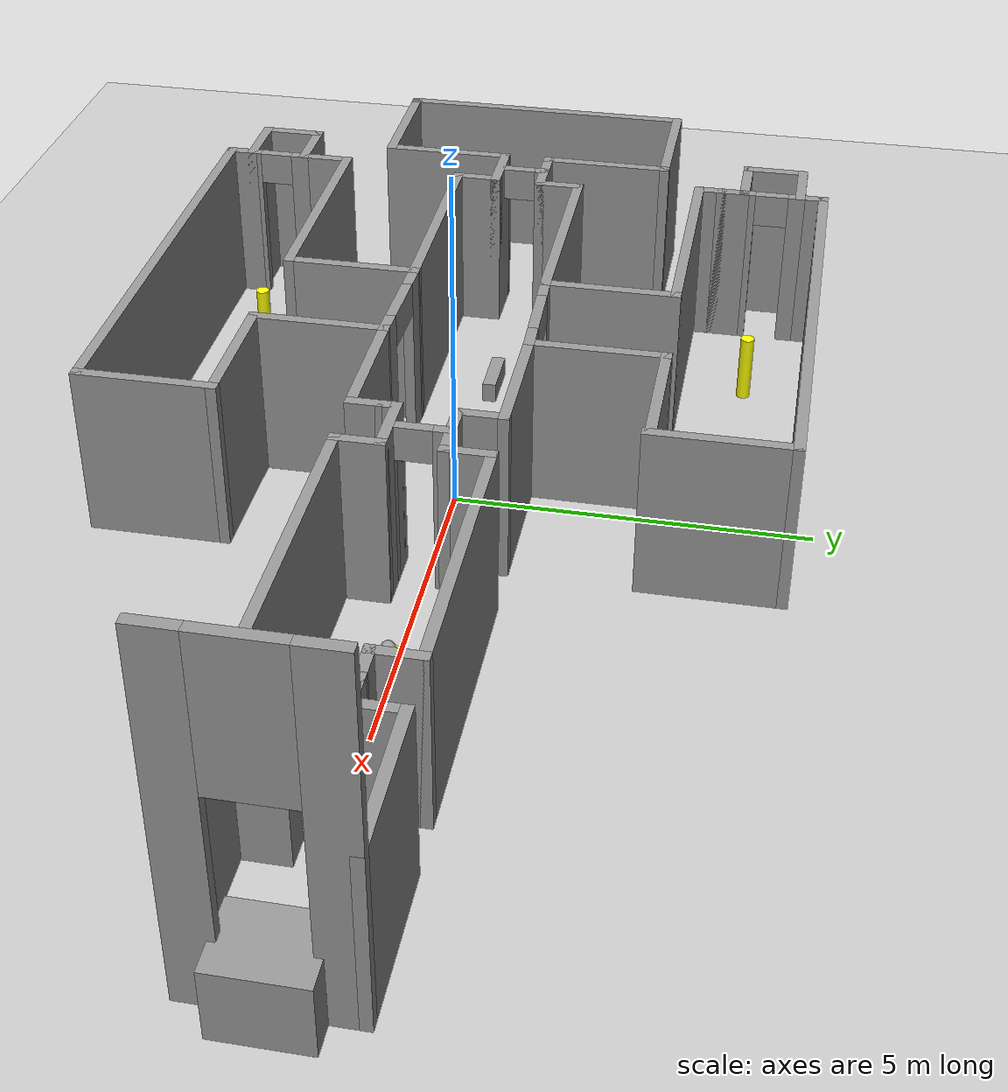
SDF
<sdf version="1.6">
 <world name="default">
  <light name="sun" type="directional">
   <pose>0 0 10 0 -0 0</pose>
   <diffuse>0.8 0.8 0.8 1</diffuse>
   <specular>0.1 0.1 0.1 1</specular>
   <attenuation>
    <range>1000</range>
    <constant>0.9</constant>
    <linear>0.01</linear>
    <quadratic>0.001</quadratic>
   </attenuation>
   <direction>-0.5 0.5 -1</direction>
  </light>
  <model name="ground_plane">
   <static>1</static>
   <link name="link">
    <collision name="collision">
     <geometry><plane><normal>0 0 1</normal><size>100 100</size></plane></geometry>
     <surface><friction><ode><mu>100</mu><mu2>50</mu2></ode></friction></surface>
    </collision>
    <visual name="visual">
     <cast_shadows>0</cast_shadows>
     <geometry><plane><normal>0 0 1</normal><size>100 100</size></plane></geometry>
     <material>
      <script><uri>file://media/materials/scripts/gazebo.material</uri><name>Gazebo/Grey</name></script>
     </material>
    </visual>
   </link>
  </model>
  <gravity>0 0 -9.8</gravity>
  <magnetic_field>6e-06 2.3e-05 -4.2e-05</magnetic_field>
  <atmosphere type="adiabatic"/>
  <physics name="default_physics" default="0" type="ode">
   <max_step_size>0.001</max_step_size>
   <real_time_factor>1</real_time_factor>
   <real_time_update_rate>1000</real_time_update_rate>
  </physics>
  <scene><ambient>0.4 0.4 0.4 1</ambient><background>0.7 0.7 0.7 1</background><shadows>1</shadows></scene>
  <spherical_coordinates>
   <surface_model>EARTH_WGS84</surface_model>
   <latitude_deg>0</latitude_deg>
   <longitude_deg>0</longitude_deg>
   <elevation>0</elevation>
   <heading_deg>0</heading_deg>
  </spherical_coordinates>
  <model name="gm1">
   <pose>0.63546 -0.02501 0 0 -0 0</pose>
   <link name="Wall_101">
    <pose>-5.975 -3.925 0 0 0 -1.5708</pose>
    <visual name="Wall_101_Visual_0">
     <pose>-0.362039 0 1.25 0 -0 0</pose>
     <geometry><box><size>0.275923 0.15 2.5</size></box></geometry>
     <material>
      <script><uri>file://media/materials/scripts/gazebo.material</uri><name>Gazebo/Grey</name></script>
      <ambient>1 1 1 1</ambient>
     </material>
    </visual>
    <collision name="Wall_101_Collision_0">
     <geometry><box><size>0.275923 0.15 2.5</size></box></geometry>
     <pose>-0.362039 0 1.25 0 -0 0</pose>
    </collision>
    <visual name="Wall_101_Visual_1">
     <pose>0.387961 0 1.25 0 -0 0</pose>
     <geometry><box><size>0.224077 0.15 2.5</size></box></geometry>
     <material>
      <script><uri>file://media/materials/scripts/gazebo.material</uri><name>Gazebo/Grey</name></script>
      <ambient>1 1 1 1</ambient>
     </material>
    </visual>
    <collision name="Wall_101_Collision_1">
     <geometry><box><size>0.224077 0.15 2.5</size></box></geometry>
     <pose>0.387961 0 1.25 0 -0 0</pose>
    </collision>
    <visual name="Wall_101_Visual_2">
     <pose>0.025923 0 2.25 0 -0 0</pose>
     <geometry><box><size>0.5 0.15 0.5</size></box></geometry>
     <material>
      <script><uri>file://media/materials/scripts/gazebo.material</uri><name>Gazebo/Grey</name></script>
      <ambient>1 1 1 1</ambient>
     </material>
    </visual>
    <collision name="Wall_101_Collision_2">
     <geometry><box><size>0.5 0.15 0.5</size></box></geometry>
     <pose>0.025923 0 2.25 0 -0 0</pose>
    </collision>
   </link>
   <link name="Wall_103">
    <pose>1.30784 0.043765 0 0 0 -1.5708</pose>
    <visual name="Wall_103_Visual_0">
     <pose>-0.25373 0 1.25 0 -0 0</pose>
     <geometry><box><size>0.242539 0.15 2.5</size></box></geometry>
     <material>
      <script><uri>file://media/materials/scripts/gazebo.material</uri><name>Gazebo/Grey</name></script>
      <ambient>1 1 1 1</ambient>
     </material>
    </visual>
    <collision name="Wall_103_Collision_0">
     <geometry><box><size>0.242539 0.15 2.5</size></box></geometry>
     <pose>-0.25373 0 1.25 0 -0 0</pose>
    </collision>
    <visual name="Wall_103_Visual_1">
     <pose>0.37127 0 1.25 0 -0 0</pose>
     <geometry><box><size>0.007461 0.15 2.5</size></box></geometry>
     <material>
      <script><uri>file://media/materials/scripts/gazebo.material</uri><name>Gazebo/Grey</name></script>
      <ambient>1 1 1 1</ambient>
     </material>
    </visual>
    <collision name="Wall_103_Collision_1">
     <geometry><box><size>0.007461 0.15 2.5</size></box></geometry>
     <pose>0.37127 0 1.25 0 -0 0</pose>
    </collision>
    <visual name="Wall_103_Visual_2">
     <pose>0.117539 0 2.25 0 -0 0</pose>
     <geometry><box><size>0.5 0.15 0.5</size></box></geometry>
     <material>
      <script><uri>file://media/materials/scripts/gazebo.material</uri><name>Gazebo/Grey</name></script>
      <ambient>1 1 1 1</ambient>
     </material>
    </visual>
    <collision name="Wall_103_Collision_2">
     <geometry><box><size>0.5 0.15 0.5</size></box></geometry>
     <pose>0.117539 0 2.25 0 -0 0</pose>
    </collision>
   </link>
   <link name="Wall_105">
    <pose>6.018 0 0 0 0 -1.5708</pose>
    <visual name="Wall_105_Visual_0">
     <pose>-0.381016 0 1.25 0 -0 0</pose>
     <geometry><box><size>0.187968 0.15 2.5</size></box></geometry>
     <material>
      <script><uri>file://media/materials/scripts/gazebo.material</uri><name>Gazebo/Grey</name></script>
      <ambient>1 1 1 1</ambient>
     </material>
    </visual>
    <collision name="Wall_105_Collision_0">
     <geometry><box><size>0.187968 0.15 2.5</size></box></geometry>
     <pose>-0.381016 0 1.25 0 -0 0</pose>
    </collision>
    <visual name="Wall_105_Visual_1">
     <pose>0.343984 0 1.25 0 -0 0</pose>
     <geometry><box><size>0.262032 0.15 2.5</size></box></geometry>
     <material>
      <script><uri>file://media/materials/scripts/gazebo.material</uri><name>Gazebo/Grey</name></script>
      <ambient>1 1 1 1</ambient>
     </material>
    </visual>
    <collision name="Wall_105_Collision_1">
     <geometry><box><size>0.262032 0.15 2.5</size></box></geometry>
     <pose>0.343984 0 1.25 0 -0 0</pose>
    </collision>
    <visual name="Wall_105_Visual_2">
     <pose>-0.037032 0 2.25 0 -0 0</pose>
     <geometry><box><size>0.5 0.15 0.5</size></box></geometry>
     <material>
      <script><uri>file://media/materials/scripts/gazebo.material</uri><name>Gazebo/Grey</name></script>
      <ambient>1 1 1 1</ambient>
     </material>
    </visual>
    <collision name="Wall_105_Collision_2">
     <geometry><box><size>0.5 0.15 0.5</size></box></geometry>
     <pose>-0.037032 0 2.25 0 -0 0</pose>
    </collision>
   </link>
   <link name="Wall_11">
    <collision name="Wall_11_Collision">
     <geometry><box><size>0.75 0.15 2.5</size></box></geometry>
     <pose>0 0 1.25 0 -0 0</pose>
    </collision>
    <visual name="Wall_11_Visual">
     <pose>0 0 1.25 0 -0 0</pose>
     <geometry><box><size>0.75 0.15 2.5</size></box></geometry>
     <material>
      <script><uri>file://media/materials/scripts/gazebo.material</uri><name>Gazebo/Grey</name></script>
      <ambient>1 1 1 1</ambient>
     </material>
    </visual>
    <pose>6.425 0.7 0 0 0 -1.5708</pose>
   </link>
   <link name="Wall_12">
    <collision name="Wall_12_Collision">
     <geometry><box><size>1 0.15 2.5</size></box></geometry>
     <pose>0 0 1.25 0 -0 0</pose>
    </collision>
    <visual name="Wall_12_Visual">
     <pose>0 0 1.25 0 -0 0</pose>
     <geometry><box><size>1 0.15 2.5</size></box></geometry>
     <material>
      <script><uri>file://media/materials/scripts/gazebo.material</uri><name>Gazebo/Grey</name></script>
      <ambient>1 1 1 1</ambient>
     </material>
    </visual>
    <pose>6 0.4 0 0 -0 3.14159</pose>
   </link>
   <link name="Wall_13">
    <collision name="Wall_13_Collision">
     <geometry><box><size>0.75 0.15 2.5</size></box></geometry>
     <pose>0 0 1.25 0 -0 0</pose>
    </collision>
    <visual name="Wall_13_Visual">
     <pose>0 0 1.25 0 -0 0</pose>
     <geometry><box><size>0.75 0.15 2.5</size></box></geometry>
     <material>
      <script><uri>file://media/materials/scripts/gazebo.material</uri><name>Gazebo/Grey</name></script>
      <ambient>1 1 1 1</ambient>
     </material>
    </visual>
    <pose>5.575 0.7 0 0 -0 1.5708</pose>
   </link>
   <link name="Wall_16">
    <collision name="Wall_16_Collision">
     <geometry><box><size>4 0.15 2.5</size></box></geometry>
     <pose>0 0 1.25 0 -0 0</pose>
    </collision>
    <visual name="Wall_16_Visual">
     <pose>0 0 1.25 0 -0 0</pose>
     <geometry><box><size>4 0.15 2.5</size></box></geometry>
     <material>
      <script><uri>file://media/materials/scripts/gazebo.material</uri><name>Gazebo/Grey</name></script>
      <ambient>1 1 1 1</ambient>
     </material>
    </visual>
    <pose>3.65 1 0 0 -0 3.14159</pose>
   </link>
   <link name="Wall_17">
    <collision name="Wall_17_Collision">
     <geometry><box><size>0.75 0.15 2.5</size></box></geometry>
     <pose>0 0 1.25 0 -0 0</pose>
    </collision>
    <visual name="Wall_17_Visual">
     <pose>0 0 1.25 0 -0 0</pose>
     <geometry><box><size>0.75 0.15 2.5</size></box></geometry>
     <material>
      <script><uri>file://media/materials/scripts/gazebo.material</uri><name>Gazebo/Grey</name></script>
      <ambient>1 1 1 1</ambient>
     </material>
    </visual>
    <pose>1.725 0.7 0 0 0 -1.5708</pose>
   </link>
   <link name="Wall_18">
    <collision name="Wall_18_Collision">
     <geometry><box><size>1 0.15 2.5</size></box></geometry>
     <pose>0 0 1.25 0 -0 0</pose>
    </collision>
    <visual name="Wall_18_Visual">
     <pose>0 0 1.25 0 -0 0</pose>
     <geometry><box><size>1 0.15 2.5</size></box></geometry>
     <material>
      <script><uri>file://media/materials/scripts/gazebo.material</uri><name>Gazebo/Grey</name></script>
      <ambient>1 1 1 1</ambient>
     </material>
    </visual>
    <pose>1.3 0.4 0 0 -0 3.14159</pose>
   </link>
   <link name="Wall_19">
    <collision name="Wall_19_Collision">
     <geometry><box><size>0.75 0.15 2.5</size></box></geometry>
     <pose>0 0 1.25 0 -0 0</pose>
    </collision>
    <visual name="Wall_19_Visual">
     <pose>0 0 1.25 0 -0 0</pose>
     <geometry><box><size>0.75 0.15 2.5</size></box></geometry>
     <material>
      <script><uri>file://media/materials/scripts/gazebo.material</uri><name>Gazebo/Grey</name></script>
      <ambient>1 1 1 1</ambient>
     </material>
    </visual>
    <pose>0.875 0.7 0 0 -0 1.5708</pose>
   </link>
   <link name="Wall_20">
    <collision name="Wall_20_Collision">
     <geometry><box><size>2 0.15 2.5</size></box></geometry>
     <pose>0 0 1.25 0 -0 0</pose>
    </collision>
    <visual name="Wall_20_Visual">
     <pose>0 0 1.25 0 -0 0</pose>
     <geometry><box><size>2 0.15 2.5</size></box></geometry>
     <material>
      <script><uri>file://media/materials/scripts/gazebo.material</uri><name>Gazebo/Grey</name></script>
      <ambient>1 1 1 1</ambient>
     </material>
    </visual>
    <pose>-0.05 1 0 0 -0 3.14159</pose>
   </link>
   <link name="Wall_21">
    <collision name="Wall_21_Collision">
     <geometry><box><size>2 0.15 2.5</size></box></geometry>
     <pose>0 0 1.25 0 -0 0</pose>
    </collision>
    <visual name="Wall_21_Visual">
     <pose>0 0 1.25 0 -0 0</pose>
     <geometry><box><size>2 0.15 2.5</size></box></geometry>
     <material>
      <script><uri>file://media/materials/scripts/gazebo.material</uri><name>Gazebo/Grey</name></script>
      <ambient>1 1 1 1</ambient>
     </material>
    </visual>
    <pose>-0.974999 1.925 0 0 -0 1.5708</pose>
   </link>
   <link name="Wall_22">
    <collision name="Wall_22_Collision">
     <geometry><box><size>2 0.15 2.5</size></box></geometry>
     <pose>0 0 1.25 0 -0 0</pose>
    </collision>
    <visual name="Wall_22_Visual">
     <pose>0 0 1.25 0 -0 0</pose>
     <geometry><box><size>2 0.15 2.5</size></box></geometry>
     <material>
      <script><uri>file://media/materials/scripts/gazebo.material</uri><name>Gazebo/Grey</name></script>
      <ambient>1 1 1 1</ambient>
     </material>
    </visual>
    <pose>-0.05 2.85 0 0 -0 0</pose>
   </link>
   <link name="Wall_23">
    <collision name="Wall_23_Collision">
     <geometry><box><size>2 0.15 2.5</size></box></geometry>
     <pose>0 0 1.25 0 -0 0</pose>
    </collision>
    <visual name="Wall_23_Visual">
     <pose>0 0 1.25 0 -0 0</pose>
     <geometry><box><size>2 0.15 2.5</size></box></geometry>
     <material>
      <script><uri>file://media/materials/scripts/gazebo.material</uri><name>Gazebo/Grey</name></script>
      <ambient>1 1 1 1</ambient>
     </material>
    </visual>
    <pose>0.875 3.74109 0 0 -0 1.5708</pose>
   </link>
   <link name="Wall_24">
    <collision name="Wall_24_Collision">
     <geometry><box><size>7 0.15 2.5</size></box></geometry>
     <pose>0 0 1.25 0 -0 0</pose>
    </collision>
    <visual name="Wall_24_Visual">
     <pose>0 0 1.25 0 -0 0</pose>
     <geometry><box><size>7 0.15 2.5</size></box></geometry>
     <material>
      <script><uri>file://media/materials/scripts/gazebo.material</uri><name>Gazebo/Grey</name></script>
      <ambient>1 1 1 1</ambient>
     </material>
    </visual>
    <pose>-2.55 4.7 0 0 -0 3.14159</pose>
   </link>
   <link name="Wall_25">
    <collision name="Wall_25_Collision">
     <geometry><box><size>0.5 0.15 2.5</size></box></geometry>
     <pose>0 0 1.25 0 -0 0</pose>
    </collision>
    <visual name="Wall_25_Visual">
     <pose>0 0 1.25 0 -0 0</pose>
     <geometry><box><size>0.5 0.15 2.5</size></box></geometry>
     <material>
      <script><uri>file://media/materials/scripts/gazebo.material</uri><name>Gazebo/Grey</name></script>
      <ambient>1 1 1 1</ambient>
     </material>
    </visual>
    <pose>-5.975 4.525 0 0 0 -1.5708</pose>
   </link>
   <link name="Wall_26">
    <collision name="Wall_26_Collision">
     <geometry><box><size>1 0.15 2.5</size></box></geometry>
     <pose>0 0 1.25 0 -0 0</pose>
    </collision>
    <visual name="Wall_26_Visual">
     <pose>0 0 1.25 0 -0 0</pose>
     <geometry><box><size>1 0.15 2.5</size></box></geometry>
     <material>
      <script><uri>file://media/materials/scripts/gazebo.material</uri><name>Gazebo/Grey</name></script>
      <ambient>1 1 1 1</ambient>
     </material>
    </visual>
    <pose>-6.4 4.35 0 0 -0 3.14159</pose>
   </link>
   <link name="Wall_27">
    <collision name="Wall_27_Collision">
     <geometry><box><size>1 0.15 2.5</size></box></geometry>
     <pose>0 0 1.25 0 -0 0</pose>
    </collision>
    <visual name="Wall_27_Visual">
     <pose>0 0 1.25 0 -0 0</pose>
     <geometry><box><size>1 0.15 2.5</size></box></geometry>
     <material>
      <script><uri>file://media/materials/scripts/gazebo.material</uri><name>Gazebo/Grey</name></script>
      <ambient>1 1 1 1</ambient>
     </material>
    </visual>
    <pose>-6.825 3.925 0 0 0 -1.5708</pose>
   </link>
   <link name="Wall_28">
    <collision name="Wall_28_Collision">
     <geometry><box><size>1 0.15 2.5</size></box></geometry>
     <pose>0 0 1.25 0 -0 0</pose>
    </collision>
    <visual name="Wall_28_Visual">
     <pose>0 0 1.25 0 -0 0</pose>
     <geometry><box><size>1 0.15 2.5</size></box></geometry>
     <material>
      <script><uri>file://media/materials/scripts/gazebo.material</uri><name>Gazebo/Grey</name></script>
      <ambient>1 1 1 1</ambient>
     </material>
    </visual>
    <pose>-6.4 3.5 0 0 -0 0</pose>
   </link>
   <link name="Wall_30">
    <collision name="Wall_30_Collision">
     <geometry><box><size>0.15 0.15 2.5</size></box></geometry>
     <pose>0 0 1.25 0 -0 0</pose>
    </collision>
    <visual name="Wall_30_Visual">
     <pose>0 0 1.25 0 -0 0</pose>
     <geometry><box><size>0.15 0.15 2.5</size></box></geometry>
     <material>
      <script><uri>file://media/materials/scripts/gazebo.material</uri><name>Gazebo/Grey</name></script>
      <ambient>1 1 1 1</ambient>
     </material>
    </visual>
    <pose>-5.975 3.15 0 0 -0 0</pose>
   </link>
   <link name="Wall_32">
    <collision name="Wall_32_Collision">
     <geometry><box><size>3.5 0.15 2.5</size></box></geometry>
     <pose>0 0 1.25 0 -0 0</pose>
    </collision>
    <visual name="Wall_32_Visual">
     <pose>0 0 1.25 0 -0 0</pose>
     <geometry><box><size>3.5 0.15 2.5</size></box></geometry>
     <material>
      <script><uri>file://media/materials/scripts/gazebo.material</uri><name>Gazebo/Grey</name></script>
      <ambient>1 1 1 1</ambient>
     </material>
    </visual>
    <pose>-4.3 2.8 0 0 -0 0</pose>
   </link>
   <link name="Wall_33">
    <collision name="Wall_33_Collision">
     <geometry><box><size>2 0.15 2.5</size></box></geometry>
     <pose>0 0 1.25 0 -0 0</pose>
    </collision>
    <visual name="Wall_33_Visual">
     <pose>0 0 1.25 0 -0 0</pose>
     <geometry><box><size>2 0.15 2.5</size></box></geometry>
     <material>
      <script><uri>file://media/materials/scripts/gazebo.material</uri><name>Gazebo/Grey</name></script>
      <ambient>1 1 1 1</ambient>
     </material>
    </visual>
    <pose>-2.625 1.875 0 0 0 -1.5708</pose>
   </link>
   <link name="Wall_34">
    <collision name="Wall_34_Collision">
     <geometry><box><size>3.25 0.15 2.5</size></box></geometry>
     <pose>0 0 1.25 0 -0 0</pose>
    </collision>
    <visual name="Wall_34_Visual">
     <pose>0 0 1.25 0 -0 0</pose>
     <geometry><box><size>3.25 0.15 2.5</size></box></geometry>
     <material>
      <script><uri>file://media/materials/scripts/gazebo.material</uri><name>Gazebo/Grey</name></script>
      <ambient>1 1 1 1</ambient>
     </material>
    </visual>
    <pose>-4.175 0.95 0 0 -0 3.14159</pose>
   </link>
   <link name="Wall_35">
    <collision name="Wall_35_Collision">
     <geometry><box><size>0.75 0.15 2.5</size></box></geometry>
     <pose>0 0 1.25 0 -0 0</pose>
    </collision>
    <visual name="Wall_35_Visual">
     <pose>0 0 1.25 0 -0 0</pose>
     <geometry><box><size>0.75 0.15 2.5</size></box></geometry>
     <material>
      <script><uri>file://media/materials/scripts/gazebo.material</uri><name>Gazebo/Grey</name></script>
      <ambient>1 1 1 1</ambient>
     </material>
    </visual>
    <pose>-5.725 0.65 0 0 0 -1.5708</pose>
   </link>
   <link name="Wall_36">
    <collision name="Wall_36_Collision">
     <geometry><box><size>1 0.15 2.5</size></box></geometry>
     <pose>0 0 1.25 0 -0 0</pose>
    </collision>
    <visual name="Wall_36_Visual">
     <pose>0 0 1.25 0 -0 0</pose>
     <geometry><box><size>1 0.15 2.5</size></box></geometry>
     <material>
      <script><uri>file://media/materials/scripts/gazebo.material</uri><name>Gazebo/Grey</name></script>
      <ambient>1 1 1 1</ambient>
     </material>
    </visual>
    <pose>-6.15 0.35 0 0 -0 3.14159</pose>
   </link>
   <link name="Wall_37">
    <collision name="Wall_37_Collision">
     <geometry><box><size>2 0.15 2.5</size></box></geometry>
     <pose>0 0 1.25 0 -0 0</pose>
    </collision>
    <visual name="Wall_37_Visual">
     <pose>0 0 1.25 0 -0 0</pose>
     <geometry><box><size>2 0.15 2.5</size></box></geometry>
     <material>
      <script><uri>file://media/materials/scripts/gazebo.material</uri><name>Gazebo/Grey</name></script>
      <ambient>1 1 1 1</ambient>
     </material>
    </visual>
    <pose>-6.575 1.275 0 0 -0 1.5708</pose>
   </link>
   <link name="Wall_38">
    <collision name="Wall_38_Collision">
     <geometry><box><size>2 0.15 2.5</size></box></geometry>
     <pose>0 0 1.25 0 -0 0</pose>
    </collision>
    <visual name="Wall_38_Visual">
     <pose>0 0 1.25 0 -0 0</pose>
     <geometry><box><size>2 0.15 2.5</size></box></geometry>
     <material>
      <script><uri>file://media/materials/scripts/gazebo.material</uri><name>Gazebo/Grey</name></script>
      <ambient>1 1 1 1</ambient>
     </material>
    </visual>
    <pose>-7.5 2.2 0 0 -0 3.14159</pose>
   </link>
   <link name="Wall_39">
    <collision name="Wall_39_Collision">
     <geometry><box><size>4.55 0.15 2.5</size></box></geometry>
     <pose>0 0 1.25 0 -0 0</pose>
    </collision>
    <visual name="Wall_39_Visual">
     <pose>0 0 1.25 0 -0 0</pose>
     <geometry><box><size>4.55 0.15 2.5</size></box></geometry>
     <material>
      <script><uri>file://media/materials/scripts/gazebo.material</uri><name>Gazebo/Grey</name></script>
      <ambient>1 1 1 1</ambient>
     </material>
    </visual>
    <pose>-8.425 0 0 0 0 -1.5708</pose>
   </link>
   <link name="Wall_40">
    <collision name="Wall_40_Collision">
     <geometry><box><size>2 0.15 2.5</size></box></geometry>
     <pose>0 0 1.25 0 -0 0</pose>
    </collision>
    <visual name="Wall_40_Visual">
     <pose>0 0 1.25 0 -0 0</pose>
     <geometry><box><size>2 0.15 2.5</size></box></geometry>
     <material>
      <script><uri>file://media/materials/scripts/gazebo.material</uri><name>Gazebo/Grey</name></script>
      <ambient>1 1 1 1</ambient>
     </material>
    </visual>
    <pose>-7.5 -2.2 0 0 -0 0</pose>
   </link>
   <link name="Wall_41">
    <collision name="Wall_41_Collision">
     <geometry><box><size>2 0.15 2.5</size></box></geometry>
     <pose>0 0 1.25 0 -0 0</pose>
    </collision>
    <visual name="Wall_41_Visual">
     <pose>0 0 1.25 0 -0 0</pose>
     <geometry><box><size>2 0.15 2.5</size></box></geometry>
     <material>
      <script><uri>file://media/materials/scripts/gazebo.material</uri><name>Gazebo/Grey</name></script>
      <ambient>1 1 1 1</ambient>
     </material>
    </visual>
    <pose>-6.575 -1.275 0 0 -0 1.5708</pose>
   </link>
   <link name="Wall_43">
    <collision name="Wall_43_Collision">
     <geometry><box><size>0.965 0.15 2.5</size></box></geometry>
     <pose>0 0 1.25 0 -0 0</pose>
    </collision>
    <visual name="Wall_43_Visual">
     <pose>0 0 1.25 0 -0 0</pose>
     <geometry><box><size>0.965 0.15 2.5</size></box></geometry>
     <material>
      <script><uri>file://media/materials/scripts/gazebo.material</uri><name>Gazebo/Grey</name></script>
      <ambient>1 1 1 1</ambient>
     </material>
    </visual>
    <pose>-6.1675 -0.35 0 0 -0 0</pose>
   </link>
   <link name="Wall_44">
    <collision name="Wall_44_Collision">
     <geometry><box><size>0.75 0.15 2.5</size></box></geometry>
     <pose>0 0 1.25 0 -0 0</pose>
    </collision>
    <visual name="Wall_44_Visual">
     <pose>0 0 1.25 0 -0 0</pose>
     <geometry><box><size>0.75 0.15 2.5</size></box></geometry>
     <material>
      <script><uri>file://media/materials/scripts/gazebo.material</uri><name>Gazebo/Grey</name></script>
      <ambient>1 1 1 1</ambient>
     </material>
    </visual>
    <pose>-5.76 -0.65 0 0 0 -1.5708</pose>
   </link>
   <link name="Wall_45">
    <collision name="Wall_45_Collision">
     <geometry><box><size>3.285 0.15 2.5</size></box></geometry>
     <pose>0 0 1.25 0 -0 0</pose>
    </collision>
    <visual name="Wall_45_Visual">
     <pose>0 0 1.25 0 -0 0</pose>
     <geometry><box><size>3.285 0.15 2.5</size></box></geometry>
     <material>
      <script><uri>file://media/materials/scripts/gazebo.material</uri><name>Gazebo/Grey</name></script>
      <ambient>1 1 1 1</ambient>
     </material>
    </visual>
    <pose>-4.1925 -0.95 0 0 -0 0</pose>
   </link>
   <link name="Wall_46">
    <collision name="Wall_46_Collision">
     <geometry><box><size>2 0.15 2.5</size></box></geometry>
     <pose>0 0 1.25 0 -0 0</pose>
    </collision>
    <visual name="Wall_46_Visual">
     <pose>0 0 1.25 0 -0 0</pose>
     <geometry><box><size>2 0.15 2.5</size></box></geometry>
     <material>
      <script><uri>file://media/materials/scripts/gazebo.material</uri><name>Gazebo/Grey</name></script>
      <ambient>1 1 1 1</ambient>
     </material>
    </visual>
    <pose>-2.625 -1.875 0 0 0 -1.5708</pose>
   </link>
   <link name="Wall_47">
    <collision name="Wall_47_Collision">
     <geometry><box><size>3.5 0.15 2.5</size></box></geometry>
     <pose>0 0 1.25 0 -0 0</pose>
    </collision>
    <visual name="Wall_47_Visual">
     <pose>0 0 1.25 0 -0 0</pose>
     <geometry><box><size>3.5 0.15 2.5</size></box></geometry>
     <material>
      <script><uri>file://media/materials/scripts/gazebo.material</uri><name>Gazebo/Grey</name></script>
      <ambient>1 1 1 1</ambient>
     </material>
    </visual>
    <pose>-4.3 -2.8 0 0 -0 3.14159</pose>
   </link>
   <link name="Wall_49">
    <collision name="Wall_49_Collision">
     <geometry><box><size>0.85 0.15 2.5</size></box></geometry>
     <pose>0 0 1.25 0 -0 0</pose>
    </collision>
    <visual name="Wall_49_Visual">
     <pose>0 0 1.25 0 -0 0</pose>
     <geometry><box><size>0.85 0.15 2.5</size></box></geometry>
     <material>
      <script><uri>file://media/materials/scripts/gazebo.material</uri><name>Gazebo/Grey</name></script>
      <ambient>1 1 1 1</ambient>
     </material>
    </visual>
    <pose>-5.975 3.15 0 0 0 -1.5708</pose>
   </link>
   <link name="Wall_5">
    <pose>8.425 0 0 0 -0 1.5708</pose>
    <visual name="Wall_5_Visual_0">
     <pose>-0.7875 0 2.5 0 -0 0</pose>
     <geometry><box><size>0.575 0.15 5</size></box></geometry>
     <material>
      <script><uri>file://media/materials/scripts/gazebo.material</uri><name>Gazebo/Grey</name></script>
      <ambient>1 1 1 1</ambient>
     </material>
    </visual>
    <collision name="Wall_5_Collision_0">
     <geometry><box><size>0.575 0.15 5</size></box></geometry>
     <pose>-0.7875 0 2.5 0 -0 0</pose>
    </collision>
    <visual name="Wall_5_Visual_1">
     <pose>0.7875 0 2.5 0 -0 0</pose>
     <geometry><box><size>0.575 0.15 5</size></box></geometry>
     <material>
      <script><uri>file://media/materials/scripts/gazebo.material</uri><name>Gazebo/Grey</name></script>
      <ambient>1 1 1 1</ambient>
     </material>
    </visual>
    <collision name="Wall_5_Collision_1">
     <geometry><box><size>0.575 0.15 5</size></box></geometry>
     <pose>0.7875 0 2.5 0 -0 0</pose>
    </collision>
    <visual name="Wall_5_Visual_2">
     <pose>0 0 4 0 -0 0</pose>
     <geometry><box><size>1 0.15 2</size></box></geometry>
     <material>
      <script><uri>file://media/materials/scripts/gazebo.material</uri><name>Gazebo/Grey</name></script>
      <ambient>1 1 1 1</ambient>
     </material>
    </visual>
    <collision name="Wall_5_Collision_2">
     <geometry><box><size>1 0.15 2</size></box></geometry>
     <pose>0 0 4 0 -0 0</pose>
    </collision>
   </link>
   <link name="Wall_51">
    <collision name="Wall_51_Collision">
     <geometry><box><size>0.85 0.15 2.5</size></box></geometry>
     <pose>0 0 1.25 0 -0 0</pose>
    </collision>
    <visual name="Wall_51_Visual">
     <pose>0 0 1.25 0 -0 0</pose>
     <geometry><box><size>0.85 0.15 2.5</size></box></geometry>
     <material>
      <script><uri>file://media/materials/scripts/gazebo.material</uri><name>Gazebo/Grey</name></script>
      <ambient>1 1 1 1</ambient>
     </material>
    </visual>
    <pose>-5.975 -3.15 0 0 0 -1.5708</pose>
   </link>
   <link name="Wall_54">
    <collision name="Wall_54_Collision">
     <geometry><box><size>1 0.15 2.5</size></box></geometry>
     <pose>0 0 1.25 0 -0 0</pose>
    </collision>
    <visual name="Wall_54_Visual">
     <pose>0 0 1.25 0 -0 0</pose>
     <geometry><box><size>1 0.15 2.5</size></box></geometry>
     <material>
      <script><uri>file://media/materials/scripts/gazebo.material</uri><name>Gazebo/Grey</name></script>
      <ambient>1 1 1 1</ambient>
     </material>
    </visual>
    <pose>-6.4 -3.5 0 0 -0 3.14159</pose>
   </link>
   <link name="Wall_55">
    <collision name="Wall_55_Collision">
     <geometry><box><size>1 0.15 2.5</size></box></geometry>
     <pose>0 0 1.25 0 -0 0</pose>
    </collision>
    <visual name="Wall_55_Visual">
     <pose>0 0 1.25 0 -0 0</pose>
     <geometry><box><size>1 0.15 2.5</size></box></geometry>
     <material>
      <script><uri>file://media/materials/scripts/gazebo.material</uri><name>Gazebo/Grey</name></script>
      <ambient>1 1 1 1</ambient>
     </material>
    </visual>
    <pose>-6.825 -3.925 0 0 0 -1.5708</pose>
   </link>
   <link name="Wall_56">
    <collision name="Wall_56_Collision">
     <geometry><box><size>1 0.15 2.5</size></box></geometry>
     <pose>0 0 1.25 0 -0 0</pose>
    </collision>
    <visual name="Wall_56_Visual">
     <pose>0 0 1.25 0 -0 0</pose>
     <geometry><box><size>1 0.15 2.5</size></box></geometry>
     <material>
      <script><uri>file://media/materials/scripts/gazebo.material</uri><name>Gazebo/Grey</name></script>
      <ambient>1 1 1 1</ambient>
     </material>
    </visual>
    <pose>-6.4 -4.35 0 0 -0 0</pose>
   </link>
   <link name="Wall_57">
    <collision name="Wall_57_Collision">
     <geometry><box><size>0.5 0.15 2.5</size></box></geometry>
     <pose>0 0 1.25 0 -0 0</pose>
    </collision>
    <visual name="Wall_57_Visual">
     <pose>0 0 1.25 0 -0 0</pose>
     <geometry><box><size>0.5 0.15 2.5</size></box></geometry>
     <material>
      <script><uri>file://media/materials/scripts/gazebo.material</uri><name>Gazebo/Grey</name></script>
      <ambient>1 1 1 1</ambient>
     </material>
    </visual>
    <pose>-5.975 -4.525 0 0 0 -1.5708</pose>
   </link>
   <link name="Wall_58">
    <collision name="Wall_58_Collision">
     <geometry><box><size>7 0.15 2.5</size></box></geometry>
     <pose>0 0 1.25 0 -0 0</pose>
    </collision>
    <visual name="Wall_58_Visual">
     <pose>0 0 1.25 0 -0 0</pose>
     <geometry><box><size>7 0.15 2.5</size></box></geometry>
     <material>
      <script><uri>file://media/materials/scripts/gazebo.material</uri><name>Gazebo/Grey</name></script>
      <ambient>1 1 1 1</ambient>
     </material>
    </visual>
    <pose>-2.55 -4.7 0 0 -0 0</pose>
   </link>
   <link name="Wall_61">
    <collision name="Wall_61_Collision">
     <geometry><box><size>2 0.15 2.5</size></box></geometry>
     <pose>0 0 1.25 0 -0 0</pose>
    </collision>
    <visual name="Wall_61_Visual">
     <pose>0 0 1.25 0 -0 0</pose>
     <geometry><box><size>2 0.15 2.5</size></box></geometry>
     <material>
      <script><uri>file://media/materials/scripts/gazebo.material</uri><name>Gazebo/Grey</name></script>
      <ambient>1 1 1 1</ambient>
     </material>
    </visual>
    <pose>0.875 -3.775 0 0 -0 1.5708</pose>
   </link>
   <link name="Wall_62">
    <collision name="Wall_62_Collision">
     <geometry><box><size>2 0.15 2.5</size></box></geometry>
     <pose>0 0 1.25 0 -0 0</pose>
    </collision>
    <visual name="Wall_62_Visual">
     <pose>0 0 1.25 0 -0 0</pose>
     <geometry><box><size>2 0.15 2.5</size></box></geometry>
     <material>
      <script><uri>file://media/materials/scripts/gazebo.material</uri><name>Gazebo/Grey</name></script>
      <ambient>1 1 1 1</ambient>
     </material>
    </visual>
    <pose>-0.05 -2.85 0 0 -0 3.14159</pose>
   </link>
   <link name="Wall_63">
    <collision name="Wall_63_Collision">
     <geometry><box><size>2 0.15 2.5</size></box></geometry>
     <pose>0 0 1.25 0 -0 0</pose>
    </collision>
    <visual name="Wall_63_Visual">
     <pose>0 0 1.25 0 -0 0</pose>
     <geometry><box><size>2 0.15 2.5</size></box></geometry>
     <material>
      <script><uri>file://media/materials/scripts/gazebo.material</uri><name>Gazebo/Grey</name></script>
      <ambient>1 1 1 1</ambient>
     </material>
    </visual>
    <pose>-0.974999 -1.925 0 0 -0 1.5708</pose>
   </link>
   <link name="Wall_66">
    <collision name="Wall_66_Collision">
     <geometry><box><size>2 0.15 2.5</size></box></geometry>
     <pose>0 0 1.25 0 -0 0</pose>
    </collision>
    <visual name="Wall_66_Visual">
     <pose>0 0 1.25 0 -0 0</pose>
     <geometry><box><size>2 0.15 2.5</size></box></geometry>
     <material>
      <script><uri>file://media/materials/scripts/gazebo.material</uri><name>Gazebo/Grey</name></script>
      <ambient>1 1 1 1</ambient>
     </material>
    </visual>
    <pose>-0.05 -1 0 0 -0 0</pose>
   </link>
   <link name="Wall_7">
    <collision name="Wall_7_Collision">
     <geometry><box><size>2.15 0.15 2.5</size></box></geometry>
     <pose>0 0 1.25 0 -0 0</pose>
    </collision>
    <visual name="Wall_7_Visual">
     <pose>0 0 1.25 0 -0 0</pose>
     <geometry><box><size>2.15 0.15 2.5</size></box></geometry>
     <material>
      <script><uri>file://media/materials/scripts/gazebo.material</uri><name>Gazebo/Grey</name></script>
      <ambient>1 1 1 1</ambient>
     </material>
    </visual>
    <pose>7.425 1 0 0 -0 3.14159</pose>
   </link>
   <link name="Wall_71">
    <collision name="Wall_71_Collision">
     <geometry><box><size>0.15 0.15 2.5</size></box></geometry>
     <pose>0 0 1.25 0 -0 0</pose>
    </collision>
    <visual name="Wall_71_Visual">
     <pose>0 0 1.25 0 -0 0</pose>
     <geometry><box><size>0.15 0.15 2.5</size></box></geometry>
     <material>
      <script><uri>file://media/materials/scripts/gazebo.material</uri><name>Gazebo/Grey</name></script>
      <ambient>1 1 1 1</ambient>
     </material>
    </visual>
    <pose>0.875 -0.65 0 0 -0 0</pose>
   </link>
   <link name="Wall_72">
    <collision name="Wall_72_Collision">
     <geometry><box><size>0.15 0.15 2.5</size></box></geometry>
     <pose>0 0 1.25 0 -0 0</pose>
    </collision>
    <visual name="Wall_72_Visual">
     <pose>0 0 1.25 0 -0 0</pose>
     <geometry><box><size>0.15 0.15 2.5</size></box></geometry>
     <material>
      <script><uri>file://media/materials/scripts/gazebo.material</uri><name>Gazebo/Grey</name></script>
      <ambient>1 1 1 1</ambient>
     </material>
    </visual>
    <pose>0.875 -0.65 0 0 -0 0</pose>
   </link>
   <link name="Wall_83">
    <collision name="Wall_83_Collision">
     <geometry><box><size>0.75 0.15 2.5</size></box></geometry>
     <pose>0 0 1.25 0 -0 0</pose>
    </collision>
    <visual name="Wall_83_Visual">
     <pose>0 0 1.25 0 -0 0</pose>
     <geometry><box><size>0.75 0.15 2.5</size></box></geometry>
     <material>
      <script><uri>file://media/materials/scripts/gazebo.material</uri><name>Gazebo/Grey</name></script>
      <ambient>1 1 1 1</ambient>
     </material>
    </visual>
    <pose>0.875 -0.7 0 0 -0 1.5708</pose>
   </link>
   <link name="Wall_84">
    <collision name="Wall_84_Collision">
     <geometry><box><size>1 0.15 2.5</size></box></geometry>
     <pose>0 0 1.25 0 -0 0</pose>
    </collision>
    <visual name="Wall_84_Visual">
     <pose>0 0 1.25 0 -0 0</pose>
     <geometry><box><size>1 0.15 2.5</size></box></geometry>
     <material>
      <script><uri>file://media/materials/scripts/gazebo.material</uri><name>Gazebo/Grey</name></script>
      <ambient>1 1 1 1</ambient>
     </material>
    </visual>
    <pose>1.3 -0.4 0 0 -0 0</pose>
   </link>
   <link name="Wall_85">
    <collision name="Wall_85_Collision">
     <geometry><box><size>0.75 0.15 2.5</size></box></geometry>
     <pose>0 0 1.25 0 -0 0</pose>
    </collision>
    <visual name="Wall_85_Visual">
     <pose>0 0 1.25 0 -0 0</pose>
     <geometry><box><size>0.75 0.15 2.5</size></box></geometry>
     <material>
      <script><uri>file://media/materials/scripts/gazebo.material</uri><name>Gazebo/Grey</name></script>
      <ambient>1 1 1 1</ambient>
     </material>
    </visual>
    <pose>1.725 -0.7 0 0 0 -1.5708</pose>
   </link>
   <link name="Wall_86">
    <collision name="Wall_86_Collision">
     <geometry><box><size>4 0.15 2.5</size></box></geometry>
     <pose>0 0 1.25 0 -0 0</pose>
    </collision>
    <visual name="Wall_86_Visual">
     <pose>0 0 1.25 0 -0 0</pose>
     <geometry><box><size>4 0.15 2.5</size></box></geometry>
     <material>
      <script><uri>file://media/materials/scripts/gazebo.material</uri><name>Gazebo/Grey</name></script>
      <ambient>1 1 1 1</ambient>
     </material>
    </visual>
    <pose>3.65 -1 0 0 -0 0</pose>
   </link>
   <link name="Wall_87">
    <collision name="Wall_87_Collision">
     <geometry><box><size>0.75 0.15 2.5</size></box></geometry>
     <pose>0 0 1.25 0 -0 0</pose>
    </collision>
    <visual name="Wall_87_Visual">
     <pose>0 0 1.25 0 -0 0</pose>
     <geometry><box><size>0.75 0.15 2.5</size></box></geometry>
     <material>
      <script><uri>file://media/materials/scripts/gazebo.material</uri><name>Gazebo/Grey</name></script>
      <ambient>1 1 1 1</ambient>
     </material>
    </visual>
    <pose>5.575 -0.7 0 0 -0 1.5708</pose>
   </link>
   <link name="Wall_88">
    <collision name="Wall_88_Collision">
     <geometry><box><size>1 0.15 2.5</size></box></geometry>
     <pose>0 0 1.25 0 -0 0</pose>
    </collision>
    <visual name="Wall_88_Visual">
     <pose>0 0 1.25 0 -0 0</pose>
     <geometry><box><size>1 0.15 2.5</size></box></geometry>
     <material>
      <script><uri>file://media/materials/scripts/gazebo.material</uri><name>Gazebo/Grey</name></script>
      <ambient>1 1 1 1</ambient>
     </material>
    </visual>
    <pose>6 -0.4 0 0 -0 0</pose>
   </link>
   <link name="Wall_89">
    <collision name="Wall_89_Collision">
     <geometry><box><size>0.75 0.15 2.5</size></box></geometry>
     <pose>0 0 1.25 0 -0 0</pose>
    </collision>
    <visual name="Wall_89_Visual">
     <pose>0 0 1.25 0 -0 0</pose>
     <geometry><box><size>0.75 0.15 2.5</size></box></geometry>
     <material>
      <script><uri>file://media/materials/scripts/gazebo.material</uri><name>Gazebo/Grey</name></script>
      <ambient>1 1 1 1</ambient>
     </material>
    </visual>
    <pose>6.425 -0.7 0 0 0 -1.5708</pose>
   </link>
   <link name="Wall_9">
    <collision name="Wall_9_Collision">
     <geometry><box><size>2.15 0.15 2.5</size></box></geometry>
     <pose>0 0 1.25 0 -0 0</pose>
    </collision>
    <visual name="Wall_9_Visual">
     <pose>0 0 1.25 0 -0 0</pose>
     <geometry><box><size>2.15 0.15 2.5</size></box></geometry>
     <material>
      <script><uri>file://media/materials/scripts/gazebo.material</uri><name>Gazebo/Grey</name></script>
      <ambient>1 1 1 1</ambient>
     </material>
    </visual>
    <pose>7.425 -1 0 0 -0 3.14159</pose>
   </link>
   <link name="Wall_93">
    <pose>-1.8 0.975 0 0 -0 0.030294</pose>
    <visual name="Wall_93_Visual_0">
     <pose>-0.674917 0 1.25 0 -0 0</pose>
     <geometry><box><size>0.450923 0.15 2.5</size></box></geometry>
     <material>
      <script><uri>file://media/materials/scripts/gazebo.material</uri><name>Gazebo/Grey</name></script>
      <ambient>1 1 1 1</ambient>
     </material>
    </visual>
    <collision name="Wall_93_Collision_0">
     <geometry><box><size>0.450923 0.15 2.5</size></box></geometry>
     <pose>-0.674917 0 1.25 0 -0 0</pose>
    </collision>
    <visual name="Wall_93_Visual_1">
     <pose>0.675461 0 1.25 0 -0 0</pose>
     <geometry><box><size>0.449835 0.15 2.5</size></box></geometry>
     <material>
      <script><uri>file://media/materials/scripts/gazebo.material</uri><name>Gazebo/Grey</name></script>
      <ambient>1 1 1 1</ambient>
     </material>
    </visual>
    <collision name="Wall_93_Collision_1">
     <geometry><box><size>0.449835 0.15 2.5</size></box></geometry>
     <pose>0.675461 0 1.25 0 -0 0</pose>
    </collision>
    <visual name="Wall_93_Visual_2">
     <pose>0.000544 0 2.25 0 -0 0</pose>
     <geometry><box><size>0.9 0.15 0.5</size></box></geometry>
     <material>
      <script><uri>file://media/materials/scripts/gazebo.material</uri><name>Gazebo/Grey</name></script>
      <ambient>1 1 1 1</ambient>
     </material>
    </visual>
    <collision name="Wall_93_Collision_2">
     <geometry><box><size>0.9 0.15 0.5</size></box></geometry>
     <pose>0.000544 0 2.25 0 -0 0</pose>
    </collision>
   </link>
   <link name="Wall_95">
    <pose>-1.8 -0.975 0 0 -0 3.1113</pose>
    <visual name="Wall_95_Visual_0">
     <pose>-0.693504 0 1.25 0 -0 0</pose>
     <geometry><box><size>0.413748 0.15 2.5</size></box></geometry>
     <material>
      <script><uri>file://media/materials/scripts/gazebo.material</uri><name>Gazebo/Grey</name></script>
      <ambient>1 1 1 1</ambient>
     </material>
    </visual>
    <collision name="Wall_95_Collision_0">
     <geometry><box><size>0.413748 0.15 2.5</size></box></geometry>
     <pose>-0.693504 0 1.25 0 -0 0</pose>
    </collision>
    <visual name="Wall_95_Visual_1">
     <pose>0.656874 0 1.25 0 -0 0</pose>
     <geometry><box><size>0.487009 0.15 2.5</size></box></geometry>
     <material>
      <script><uri>file://media/materials/scripts/gazebo.material</uri><name>Gazebo/Grey</name></script>
      <ambient>1 1 1 1</ambient>
     </material>
    </visual>
    <collision name="Wall_95_Collision_1">
     <geometry><box><size>0.487009 0.15 2.5</size></box></geometry>
     <pose>0.656874 0 1.25 0 -0 0</pose>
    </collision>
    <visual name="Wall_95_Visual_2">
     <pose>-0.03663 0 2.25 0 -0 0</pose>
     <geometry><box><size>0.9 0.15 0.5</size></box></geometry>
     <material>
      <script><uri>file://media/materials/scripts/gazebo.material</uri><name>Gazebo/Grey</name></script>
      <ambient>1 1 1 1</ambient>
     </material>
    </visual>
    <collision name="Wall_95_Collision_2">
     <geometry><box><size>0.9 0.15 0.5</size></box></geometry>
     <pose>-0.03663 0 2.25 0 -0 0</pose>
    </collision>
   </link>
   <link name="Wall_97">
    <pose>-6.14822 0.043765 0 0 0 -1.5708</pose>
    <visual name="Wall_97_Visual_0">
     <pose>-0.268643 0 1.25 0 -0 0</pose>
     <geometry><box><size>0.212715 0.15 2.5</size></box></geometry>
     <material>
      <script><uri>file://media/materials/scripts/gazebo.material</uri><name>Gazebo/Grey</name></script>
      <ambient>1 1 1 1</ambient>
     </material>
    </visual>
    <collision name="Wall_97_Collision_0">
     <geometry><box><size>0.212715 0.15 2.5</size></box></geometry>
     <pose>-0.268643 0 1.25 0 -0 0</pose>
    </collision>
    <visual name="Wall_97_Visual_1">
     <pose>0.356357 0 1.25 0 -0 0</pose>
     <geometry><box><size>0.037285 0.15 2.5</size></box></geometry>
     <material>
      <script><uri>file://media/materials/scripts/gazebo.material</uri><name>Gazebo/Grey</name></script>
      <ambient>1 1 1 1</ambient>
     </material>
    </visual>
    <collision name="Wall_97_Collision_1">
     <geometry><box><size>0.037285 0.15 2.5</size></box></geometry>
     <pose>0.356357 0 1.25 0 -0 0</pose>
    </collision>
    <visual name="Wall_97_Visual_2">
     <pose>0.087715 0 2.25 0 -0 0</pose>
     <geometry><box><size>0.5 0.15 0.5</size></box></geometry>
     <material>
      <script><uri>file://media/materials/scripts/gazebo.material</uri><name>Gazebo/Grey</name></script>
      <ambient>1 1 1 1</ambient>
     </material>
    </visual>
    <collision name="Wall_97_Collision_2">
     <geometry><box><size>0.5 0.15 0.5</size></box></geometry>
     <pose>0.087715 0 2.25 0 -0 0</pose>
    </collision>
   </link>
   <link name="Wall_99">
    <pose>-5.975 3.925 0 0 0 -1.5708</pose>
    <visual name="Wall_99_Visual_0">
     <pose>-0.373836 0 1.25 0 -0 0</pose>
     <geometry><box><size>0.252328 0.15 2.5</size></box></geometry>
     <material>
      <script><uri>file://media/materials/scripts/gazebo.material</uri><name>Gazebo/Grey</name></script>
      <ambient>1 1 1 1</ambient>
     </material>
    </visual>
    <collision name="Wall_99_Collision_0">
     <geometry><box><size>0.252328 0.15 2.5</size></box></geometry>
     <pose>-0.373836 0 1.25 0 -0 0</pose>
    </collision>
    <visual name="Wall_99_Visual_1">
     <pose>0.376164 0 1.25 0 -0 0</pose>
     <geometry><box><size>0.247672 0.15 2.5</size></box></geometry>
     <material>
      <script><uri>file://media/materials/scripts/gazebo.material</uri><name>Gazebo/Grey</name></script>
      <ambient>1 1 1 1</ambient>
     </material>
    </visual>
    <collision name="Wall_99_Collision_1">
     <geometry><box><size>0.247672 0.15 2.5</size></box></geometry>
     <pose>0.376164 0 1.25 0 -0 0</pose>
    </collision>
    <visual name="Wall_99_Visual_2">
     <pose>0.002328 0 2.25 0 -0 0</pose>
     <geometry><box><size>0.5 0.15 0.5</size></box></geometry>
     <material>
      <script><uri>file://media/materials/scripts/gazebo.material</uri><name>Gazebo/Grey</name></script>
      <ambient>1 1 1 1</ambient>
     </material>
    </visual>
    <collision name="Wall_99_Collision_2">
     <geometry><box><size>0.5 0.15 0.5</size></box></geometry>
     <pose>0.002328 0 2.25 0 -0 0</pose>
    </collision>
   </link>
   <static>1</static>
  </model>
  <model name="unit_cylinder_box">
   <link name="link_1">
    <pose>1.04323 4.05988 -0.35 0 -0 0</pose>
    <inertial>
     <mass>1</mass>
     <inertia>
      <ixx>0.166667</ixx>
      <ixy>0</ixy>
      <ixz>0</ixz>
      <iyy>0.166667</iyy>
      <iyz>0</iyz>
      <izz>0.166667</izz>
     </inertia>
    </inertial>
    <visual name="visual">
     <geometry><box><size>0.8 0.2 0.3</size></box></geometry>
     <material>
      <lighting>1</lighting>
      <script><uri>file://media/materials/scripts/gazebo.material</uri><name>Gazebo/Grey</name></script>
      <ambient>0.3 0.3 0.3 1</ambient>
      <diffuse>0.7 0.7 0.7 1</diffuse>
      <specular>0.01 0.01 0.01 1</specular>
      <emissive>0 0 0 1</emissive>
      <shader type="vertex"><normal_map>__default__</normal_map></shader>
     </material>
    </visual>
    <collision name="collision">
     <geometry><box><size>0.8 0.2 0.3</size></box></geometry>
     <surface>
      <friction>
       <ode><mu>1</mu><mu2>1</mu2><fdir1>0 0 0</fdir1><slip1>0</slip1><slip2>0</slip2></ode>
       <torsional>
        <coefficient>1</coefficient>
        <patch_radius>0</patch_radius>
        <surface_radius>0</surface_radius>
        <use_patch_radius>1</use_patch_radius>
        <ode><slip>0</slip></ode>
       </torsional>
      </friction>
      <bounce><restitution_coefficient>0</restitution_coefficient><threshold>1e+06</threshold></bounce>
      <contact>
       <collide_without_contact>0</collide_without_contact>
       <collide_without_contact_bitmask>1</collide_without_contact_bitmask>
       <collide_bitmask>1</collide_bitmask>
       <ode>
        <soft_cfm>0</soft_cfm>
        <soft_erp>0.2</soft_erp>
        <kp>1e+13</kp>
        <kd>1</kd>
        <max_vel>0.01</max_vel>
        <min_depth>0</min_depth>
       </ode>
       <bullet>
        <split_impulse>1</split_impulse>
        <split_impulse_penetration_threshold>-0.01</split_impulse_penetration_threshold>
        <soft_cfm>0</soft_cfm>
        <soft_erp>0.2</soft_erp>
        <kp>1e+13</kp>
        <kd>1</kd>
       </bullet>
      </contact>
     </surface>
    </collision>
   </link>
   <link name="link_2">
    <pose>8.04323 4.05988 -0.25 0 -0 0</pose>
    <inertial>
     <mass>1</mass>
     <inertia><ixx>0.145833</ixx><ixy>0</ixy><ixz>0</ixz><iyy>0.145833</iyy><iyz>0</iyz><izz>0.125</izz></inertia>
    </inertial>
    <visual name="visual">
     <geometry><cylinder><radius>0.2</radius><length>0.5</length></cylinder></geometry>
     <material>
      <lighting>1</lighting>
      <script><uri>file://media/materials/scripts/gazebo.material</uri><name>Gazebo/Grey</name></script>
      <ambient>1 1 0 1</ambient>
      <diffuse>1 1 0 1</diffuse>
      <specular>0.01 0 0.01 1</specular>
      <emissive>0 0 0 1</emissive>
      <shader type="vertex"><normal_map>__default__</normal_map></shader>
     </material>
    </visual>
    <collision name="collision">
     <geometry><cylinder><radius>0.2</radius><length>0.5</length></cylinder></geometry>
     <surface>
      <friction>
       <ode><mu>1</mu><mu2>1</mu2><fdir1>0 0 0</fdir1><slip1>0</slip1><slip2>0</slip2></ode>
       <torsional>
        <coefficient>1</coefficient>
        <patch_radius>0</patch_radius>
        <surface_radius>0</surface_radius>
        <use_patch_radius>1</use_patch_radius>
        <ode><slip>0</slip></ode>
       </torsional>
      </friction>
      <bounce><restitution_coefficient>0</restitution_coefficient><threshold>1e+06</threshold></bounce>
      <contact>
       <collide_without_contact>0</collide_without_contact>
       <collide_without_contact_bitmask>1</collide_without_contact_bitmask>
       <collide_bitmask>1</collide_bitmask>
       <ode>
        <soft_cfm>0</soft_cfm>
        <soft_erp>0.2</soft_erp>
        <kp>1e+13</kp>
        <kd>1</kd>
        <max_vel>0.01</max_vel>
        <min_depth>0</min_depth>
       </ode>
       <bullet>
        <split_impulse>1</split_impulse>
        <split_impulse_penetration_threshold>-0.01</split_impulse_penetration_threshold>
        <soft_cfm>0</soft_cfm>
        <soft_erp>0.2</soft_erp>
        <kp>1e+13</kp>
        <kd>1</kd>
       </bullet>
      </contact>
     </surface>
    </collision>
   </link>
   <link name="link_3">
    <pose>8.04323 4.05988 0.1 0 -0 0</pose>
    <inertial>
     <mass>1</mass>
     <inertia><ixx>0.1</ixx><ixy>0</ixy><ixz>0</ixz><iyy>0.1</iyy><iyz>0</iyz><izz>0.1</izz></inertia>
    </inertial>
    <visual name="visual">
     <geometry><sphere><radius>0.1</radius></sphere></geometry>
     <material>
      <lighting>1</lighting>
      <script><uri>file://media/materials/scripts/gazebo.material</uri><name>Gazebo/Grey</name></script>
      <ambient>0.3 0.3 0.3 1</ambient>
      <diffuse>0.7 0.7 0.7 1</diffuse>
      <specular>0.01 0.01 0.01 1</specular>
      <emissive>0 0 0 1</emissive>
      <shader type="vertex"><normal_map>__default__</normal_map></shader>
     </material>
    </visual>
    <collision name="collision">
     <geometry><sphere><radius>0.1</radius></sphere></geometry>
     <surface>
      <friction>
       <ode><mu>1</mu><mu2>1</mu2><fdir1>0 0 0</fdir1><slip1>0</slip1><slip2>0</slip2></ode>
       <torsional>
        <coefficient>1</coefficient>
        <patch_radius>0</patch_radius>
        <surface_radius>0</surface_radius>
        <use_patch_radius>1</use_patch_radius>
        <ode><slip>0</slip></ode>
       </torsional>
      </friction>
      <bounce><restitution_coefficient>0</restitution_coefficient><threshold>1e+06</threshold></bounce>
      <contact>
       <collide_without_contact>0</collide_without_contact>
       <collide_without_contact_bitmask>1</collide_without_contact_bitmask>
       <collide_bitmask>1</collide_bitmask>
       <ode>
        <soft_cfm>0</soft_cfm>
        <soft_erp>0.2</soft_erp>
        <kp>1e+13</kp>
        <kd>1</kd>
        <max_vel>0.01</max_vel>
        <min_depth>0</min_depth>
       </ode>
       <bullet>
        <split_impulse>1</split_impulse>
        <split_impulse_penetration_threshold>-0.01</split_impulse_penetration_threshold>
        <soft_cfm>0</soft_cfm>
        <soft_erp>0.2</soft_erp>
        <kp>1e+13</kp>
        <kd>1</kd>
       </bullet>
      </contact>
     </surface>
    </collision>
   </link>
   <static>0</static>
   <pose>-4.04323 -4.05988 0.5 0 -0 0</pose>
  </model>
  <model name="unit_cylinder_0_2">
   <link name="link">
    <inertial>
     <mass>1</mass>
     <inertia><ixx>0.145833</ixx><ixy>0</ixy><ixz>0</ixz><iyy>0.145833</iyy><iyz>0</iyz><izz>0.125</izz></inertia>
    </inertial>
    <visual name="visual">
     <geometry><cylinder><radius>0.1</radius><length>1</length></cylinder></geometry>
     <material>
      <script><name>Gazebo/Grey</name><uri>file://media/materials/scripts/gazebo.material</uri></script>
      <ambient>1 1 0 1</ambient>
      <diffuse>1 1 0 1</diffuse>
      <specular>0.01 0.01 0.01 1</specular>
      <emissive>0 0 0 1</emissive>
      <shader type="vertex"><normal_map>__default__</normal_map></shader>
     </material>
    </visual>
    <collision name="collision">
     <geometry><cylinder><radius>0.1</radius><length>1</length></cylinder></geometry>
     <surface>
      <friction>
       <ode><mu>1</mu><mu2>1</mu2><fdir1>0 0 0</fdir1><slip1>0</slip1><slip2>0</slip2></ode>
       <torsional>
        <coefficient>1</coefficient>
        <patch_radius>0</patch_radius>
        <surface_radius>0</surface_radius>
        <use_patch_radius>1</use_patch_radius>
        <ode><slip>0</slip></ode>
       </torsional>
      </friction>
      <bounce><restitution_coefficient>0</restitution_coefficient><threshold>1e+06</threshold></bounce>
      <contact>
       <collide_without_contact>0</collide_without_contact>
       <collide_without_contact_bitmask>1</collide_without_contact_bitmask>
       <collide_bitmask>1</collide_bitmask>
       <ode>
        <soft_cfm>0</soft_cfm>
        <soft_erp>0.2</soft_erp>
        <kp>1e+13</kp>
        <kd>1</kd>
        <max_vel>0.01</max_vel>
        <min_depth>0</min_depth>
       </ode>
       <bullet>
        <split_impulse>1</split_impulse>
        <split_impulse_penetration_threshold>-0.01</split_impulse_penetration_threshold>
        <soft_cfm>0</soft_cfm>
        <soft_erp>0.2</soft_erp>
        <kp>1e+13</kp>
        <kd>1</kd>
       </bullet>
      </contact>
     </surface>
    </collision>
   </link>
   <static>0</static>
   <pose>-3.50985 3.77655 0.5 0 -0 0</pose>
  </model>
  <model name="unit_cylinder_0_3_0">
   <link name="link">
    <pose>0 0 0.5 0 -0 0</pose>
    <inertial>
     <mass>1</mass>
     <inertia><ixx>0.145833</ixx><ixy>0</ixy><ixz>0</ixz><iyy>0.145833</iyy><iyz>0</iyz><izz>0.125</izz></inertia>
    </inertial>
    <visual name="visual">
     <geometry><cylinder><radius>0.1</radius><length>1</length></cylinder></geometry>
     <material>
      <script><name>Gazebo/Grey</name><uri>file://media/materials/scripts/gazebo.material</uri></script>
      <ambient>1 1 0 1</ambient>
      <diffuse>1 1 0 1</diffuse>
      <specular>0.01 0.01 0.01 1</specular>
      <emissive>0 0 0 1</emissive>
      <shader type="vertex"><normal_map>__default__</normal_map></shader>
     </material>
    </visual>
    <collision name="collision">
     <geometry><cylinder><radius>0.1</radius><length>1</length></cylinder></geometry>
     <surface>
      <friction>
       <ode><mu>1</mu><mu2>1</mu2><fdir1>0 0 0</fdir1><slip1>0</slip1><slip2>0</slip2></ode>
       <torsional>
        <coefficient>1</coefficient>
        <patch_radius>0</patch_radius>
        <surface_radius>0</surface_radius>
        <use_patch_radius>1</use_patch_radius>
        <ode><slip>0</slip></ode>
       </torsional>
      </friction>
      <bounce><restitution_coefficient>0</restitution_coefficient><threshold>1e+06</threshold></bounce>
      <contact>
       <collide_without_contact>0</collide_without_contact>
       <collide_without_contact_bitmask>1</collide_without_contact_bitmask>
       <collide_bitmask>1</collide_bitmask>
       <ode>
        <soft_cfm>0</soft_cfm>
        <soft_erp>0.2</soft_erp>
        <kp>1e+13</kp>
        <kd>1</kd>
        <max_vel>0.01</max_vel>
        <min_depth>0</min_depth>
       </ode>
       <bullet>
        <split_impulse>1</split_impulse>
        <split_impulse_penetration_threshold>-0.01</split_impulse_penetration_threshold>
        <soft_cfm>0</soft_cfm>
        <soft_erp>0.2</soft_erp>
        <kp>1e+13</kp>
        <kd>1</kd>
       </bullet>
      </contact>
     </surface>
    </collision>
   </link>
   <static>0</static>
   <pose>-3.5613 -3.79228 0 0 -0 0</pose>
  </model>
  <model name="unit_box_1">
   <link name="link">
    <pose>0 -0.07 0 0 -0 0</pose>
    <inertial>
     <mass>1</mass>
     <inertia>
      <ixx>0.166667</ixx>
      <ixy>0</ixy>
      <ixz>0</ixz>
      <iyy>0.166667</iyy>
      <iyz>0</iyz>
      <izz>0.166667</izz>
     </inertia>
    </inertial>
    <visual name="visual">
     <geometry><box><size>1 1.2 1</size></box></geometry>
     <material>
      <script><name>Gazebo/Grey</name><uri>file://media/materials/scripts/gazebo.material</uri></script>
      <ambient>0.3 0.3 0.3 1</ambient>
      <diffuse>0.7 0.7 0.7 1</diffuse>
      <specular>0.01 0.01 0.01 1</specular>
      <emissive>0 0 0 1</emissive>
      <shader type="vertex"><normal_map>__default__</normal_map></shader>
     </material>
    </visual>
    <collision name="collision">
     <geometry><box><size>1 1.2 1</size></box></geometry>
     <surface>
      <friction>
       <ode><mu>1</mu><mu2>1</mu2><fdir1>0 0 0</fdir1><slip1>0</slip1><slip2>0</slip2></ode>
       <torsional>
        <coefficient>1</coefficient>
        <patch_radius>0</patch_radius>
        <surface_radius>0</surface_radius>
        <use_patch_radius>1</use_patch_radius>
        <ode><slip>0</slip></ode>
       </torsional>
      </friction>
      <bounce><restitution_coefficient>0</restitution_coefficient><threshold>1e+06</threshold></bounce>
      <contact>
       <collide_without_contact>0</collide_without_contact>
       <collide_without_contact_bitmask>1</collide_without_contact_bitmask>
       <collide_bitmask>1</collide_bitmask>
       <ode>
        <soft_cfm>0</soft_cfm>
        <soft_erp>0.2</soft_erp>
        <kp>1e+13</kp>
        <kd>1</kd>
        <max_vel>0.01</max_vel>
        <min_depth>0</min_depth>
       </ode>
       <bullet>
        <split_impulse>1</split_impulse>
        <split_impulse_penetration_threshold>-0.01</split_impulse_penetration_threshold>
        <soft_cfm>0</soft_cfm>
        <soft_erp>0.2</soft_erp>
        <kp>1e+13</kp>
        <kd>1</kd>
       </bullet>
      </contact>
     </surface>
    </collision>
   </link>
   <static>0</static>
   <pose>9.03295 0.049365 0.5 0 -0 0</pose>
  </model>
 </world>
</sdf>
